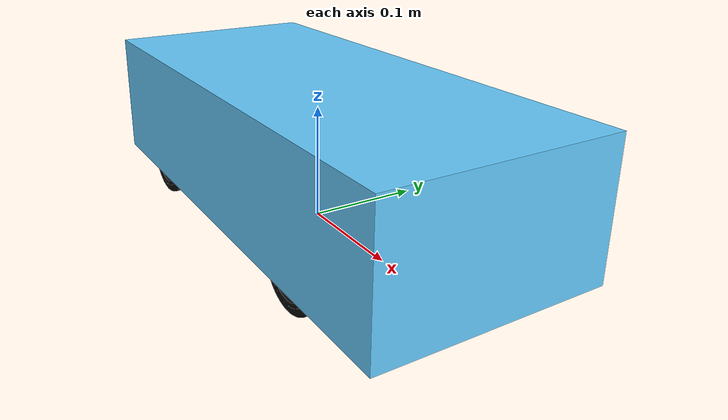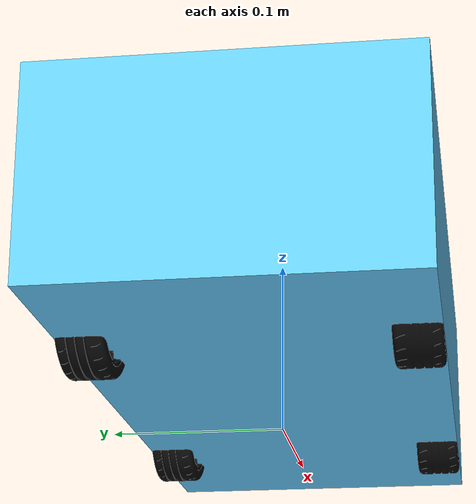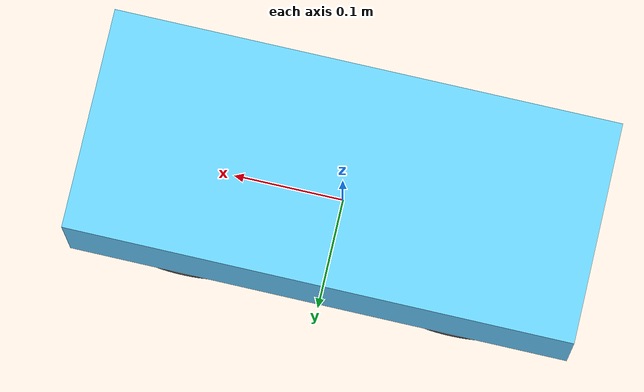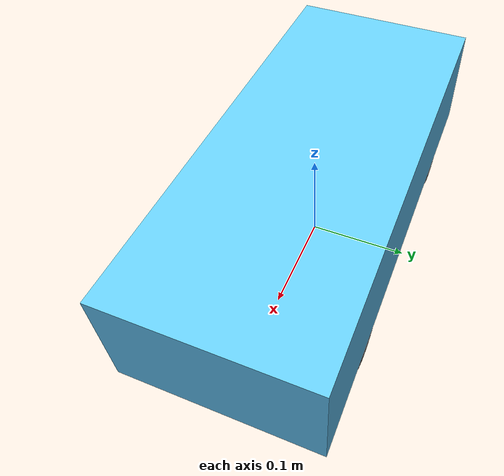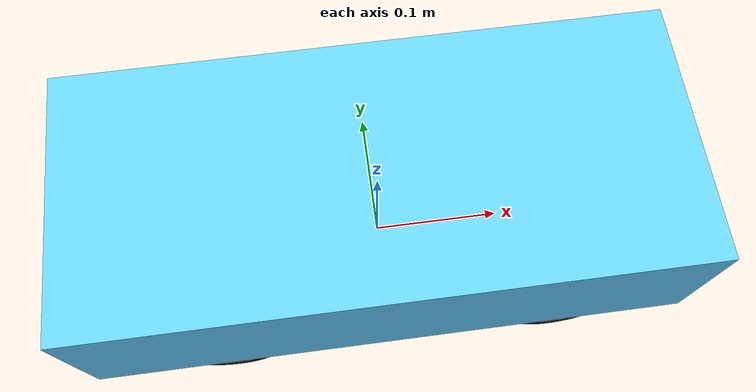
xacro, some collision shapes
<?xml version="1.0"?>
<robot name="cuchak" xmlns:xacro="http://www.ros.org/wiki/xacro">

  <xacro:include filename="$(find cuchak_description)/urdf/common_properties.xacro"/>

  <xacro:include filename="$(find cuchak_description)/urdf/gz_definitions.xacro"/>

  <xacro:include filename="$(find cuchak_description)/urdf/mobile_base.xacro"/>

  <xacro:include filename="$(find cuchak_description)/urdf/webcam.xacro"/>

</robot>

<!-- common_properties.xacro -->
<robot xmlns:xacro="http://www.ros.org/wiki/xacro">
    <material name="green">
        <color rgba="0.0 0.5 0.0 1.0"/>
    </material>

    <material name="grey">
        <color rgba="0.5 0.5 0.5 1.0"/>
    </material>

    <material name="black">
        <color rgba="0.05 0.05 0.05 1.0"/>
    </material>

    <xacro:macro name="box_inertia" params="l w h m o_xyz o_rpy">
        <inertial>
                <origin xyz="${o_xyz}" rpy="${o_rpy}"/>
                <mass value="${m}"/>
                <inertia ixx="${m*(w*w+h*h)/12.0}" ixy="0.0" ixz="0.0"
                         iyy="${m*(l*l+h*h)/12.0}" iyz="0.0"
                         izz="${m*(w*w+l*l)/12.0}"/>
        </inertial>
    </xacro:macro>

    <xacro:macro name="cylinder_inertia" params="r l m o_xyz o_rpy">
        <inertial>
                <origin xyz="${o_xyz}" rpy="${o_rpy}"/>
                <mass value="${m}"/>
                <inertia ixx="${m*(3*r*r+l*l)/12.0}" ixy="0.0" ixz="0.0"
                         iyy="${m*(l*l+3*r*r)/12.0}" iyz="0.0"
                         izz="${m*(r*r)/2.0}"/>
        </inertial>
    </xacro:macro>

    <xacro:macro name="sphere_inertia" params="r m o_xyz o_rpy">
        <inertial>
                <origin xyz="${o_xyz}" rpy="${o_rpy}"/>
                <mass value="${m}"/>
                <inertia ixx="${2*m*r*r/5.0}" ixy="0.0" ixz="0.0"
                         iyy="${2*m*r*r/5.0}" iyz="0.0"
                         izz="${2*m*r*r/5.0}"/>
        </inertial>
    </xacro:macro>

</robot>

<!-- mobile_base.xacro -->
<robot xmlns:xacro="http://www.ros.org/wiki/xacro">

  <!-- ================= MATERIALES ================= -->
  <material name="black">
    <color rgba="0 0 0 1"/>
  </material>
  <material name="blue">
    <color rgba="0.4 0.8 1.0 1.0"/>
  </material>

  <!-- ================= PARÁMETROS ================= -->
  <!-- 0.001 porque los STL están en milímetros -->
  <xacro:property name="mesh_scale" value="0.001"/>
  <xacro:property name="pi_2" value="1.5707963"/>

  <!-- En tu CAD el frente del carro apunta a -Y. ROS/Gazebo quieren el frente en +X.
       Por eso la malla de la base y su inercia se giran +90° en Z. -->
  <xacro:property name="cad_yaw" value="1.5707963"/>

  <!-- Llantas (medidas del STL: diámetro 68.60 mm, ancho 25.78 mm).
       El centro de la llanta queda a 0.0713 - 0.037 = 0.0343 m del piso -->
  <xacro:property name="wheel_radius" value="0.0343"/>
  <xacro:property name="wheel_width"  value="0.02578"/>
  <xacro:property name="wheel_mass"   value="0.009"/>
  <xacro:property name="wheel_z"      value="-0.037"/>

  <!-- Posiciones ya en el marco ROS (x adelante, y izquierda).
       Salen de tus joints: x_ros = -y_cad, y_ros = x_cad -->
  <xacro:property name="front_x"    value="0.125"/>
  <xacro:property name="rear_x"     value="-0.12"/>
  <xacro:property name="half_track" value="0.0859"/>

  <!-- Base -->
  <xacro:property name="base_mass" value="1.2700"/>
  <xacro:property name="cm_cad_x" value="-0.0003"/>
  <xacro:property name="cm_cad_y" value="0.0049"/>
  <xacro:property name="cm_cad_z" value="-0.0207"/>

  <xacro:macro name="wheel_link" params="prefix mesh_file">
    <link name="${prefix}_wheel_link">
      <inertial>
        <origin xyz="0 0 0" rpy="0 0 0"/>
        <mass value="${wheel_mass}"/>
        <!-- Mismos valores de tu script, pero el mayor (7.409e-6) va en X porque
             el eje de la llanta en el STL es X. Los productos de inercia eran ~1e-10 -->
        <inertia ixx="7.40919338e-06" ixy="0" ixz="0"
                 iyy="4.16983255e-06" iyz="0"
                 izz="4.16901342e-06"/>
      </inertial>
      <visual>
        <origin xyz="0 0 0" rpy="0 0 0"/>
        <geometry>
          <mesh filename="${mesh_file}" scale="${mesh_scale} ${mesh_scale} ${mesh_scale}"/>
        </geometry>
        <material name="black"/>
      </visual>
      <!-- Cilindro en vez de malla: más estable y rápido en Gazebo.
           El cilindro nace con su eje en Z; el giro de 90° en Y lo pone en X, como la llanta -->
      <collision>
        <origin xyz="0 0 0" rpy="0 ${pi_2} 0"/>
        <geometry>
          <cylinder radius="${wheel_radius}" length="${wheel_width}"/>
        </geometry>
      </collision>
    </link>
    <gazebo reference="${prefix}_wheel_link">
      <mu1>1.0</mu1>
      <mu2>1.0</mu2>
    </gazebo>
  </xacro:macro>

  <!-- ================= MACRO: LLANTA TRASERA (tracción) ================= -->
  <xacro:macro name="rear_wheel" params="prefix mesh_file y">
    <xacro:wheel_link prefix="${prefix}" mesh_file="${mesh_file}"/>
    <joint name="${prefix}_wheel_joint" type="continuous">
      <parent link="base_link"/>
      <child link="${prefix}_wheel_link"/>
      <!-- Misma orientación que la base (yaw del CAD): el eje X de la llanta queda en +Y (lateral) -->
      <origin xyz="${rear_x} ${y} ${wheel_z}" rpy="0 0 ${cad_yaw}"/>
      <axis xyz="1 0 0"/>
      <dynamics damping="0.001" friction="0.0"/>
    </joint>
  </xacro:macro>

  <!-- ================= MACRO: LLANTA DELANTERA (dirección) ================= -->
  <xacro:macro name="front_wheel" params="prefix mesh_file y">
    <link name="${prefix}_steering_link">
      <inertial>
        <origin xyz="0 0 0" rpy="0 0 0"/>
        <mass value="0.01"/>
        <inertia ixx="1e-6" ixy="0" ixz="0" iyy="1e-6" iyz="0" izz="1e-6"/>
      </inertial>
    </link>
    <joint name="${prefix}_steering_joint" type="revolute">
      <parent link="base_link"/>
      <child link="${prefix}_steering_link"/>
      <origin xyz="${front_x} ${y} ${wheel_z}" rpy="0 0 0"/>
      <axis xyz="0 0 1"/>
      <limit lower="-0.8" upper="0.8" effort="5.0" velocity="5.0"/>
    </joint>

    <xacro:wheel_link prefix="${prefix}" mesh_file="${mesh_file}"/>
    <joint name="${prefix}_wheel_joint" type="continuous">
      <parent link="${prefix}_steering_link"/>
      <child link="${prefix}_wheel_link"/>
      <origin xyz="0 0 0" rpy="0 0 ${cad_yaw}"/>
      <axis xyz="1 0 0"/>
      <dynamics damping="0.001" friction="0.0"/>
    </joint>
  </xacro:macro>

  <!-- ================= BASE ================= -->
  <link name="base_footprint"/>

  <link name="base_link">
    <inertial>
      <origin xyz="${-cm_cad_y} ${cm_cad_x} ${cm_cad_z}" rpy="0 0 ${cad_yaw}"/>
      <mass value="${base_mass}"/>
      <inertia ixx="0.010070" ixy="0.000075" ixz="0.000016"
              iyy="0.001856" iyz="-0.000063"
              izz="0.010855"/>
    </inertial>
    <visual>
      <origin xyz="0 0 0" rpy="0 0 ${cad_yaw}"/>
      <geometry>
        <mesh filename="package://cuchak_description/meshes/base.stl"
              scale="${mesh_scale} ${mesh_scale} ${mesh_scale}"/>
      </geometry>
      <material name="blue"/>
    </visual>
    <collision>
      <origin xyz="0 0 0" rpy="0 0 0"/>
      <geometry>
        <box size="0.45364 0.19758 0.11505"/>
      </geometry>
    </collision>
  </link>

  <joint name="base_joint" type="fixed">
    <parent link="base_footprint"/>
    <child link="base_link"/>
    <origin xyz="0 0 0.0713" rpy="0 0 0"/>
  </joint>

  <xacro:front_wheel prefix="front_left"
      mesh_file="package://cuchak_description/meshes/llanta_derecha_trasera.stl"
      y="${half_track}"/>
  <xacro:front_wheel prefix="front_right"
      mesh_file="package://cuchak_description/meshes/llanta_izquierda_trasera.stl"
      y="${-half_track}"/>
  <xacro:rear_wheel prefix="rear_left"
      mesh_file="package://cuchak_description/meshes/llanta_derecha_trasera.stl"
      y="${half_track}"/>
  <xacro:rear_wheel prefix="rear_right"
      mesh_file="package://cuchak_description/meshes/llanta_izquierda_trasera.stl"
      y="${-half_track}"/>

</robot>

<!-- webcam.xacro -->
<robot xmlns:xacro="http://www.ros.org/wiki/xacro">

    <xacro:property name="webcam_length" value="0.05"/>
    <xacro:property name="webcam_width" value="0.05"/>
    <xacro:property name="webcam_height" value="0.05"/>
    <xacro:property name="webcam_mass" value="0.1"/>

    <link name="webcam_link">

        <xacro:box_inertia
        l="${webcam_length}"
        w="${webcam_width}"
        h="${webcam_height}"
        m="${webcam_mass}"
        o_xyz="0 0 0"
        o_rpy="0 0 0"/>

        <visual>
        <origin xyz="0 0 0" rpy="0 0 0"/>
        <geometry>
            <box size="${webcam_length} ${webcam_width} ${webcam_height}"/>
        </geometry>
        <material name="green"/>
        </visual>

        <collision>
        <origin xyz="0 0 0" rpy="0 0 0"/>
        <geometry>
            <box size="${webcam_length} ${webcam_width} ${webcam_height}"/>
        </geometry>
        </collision>

    </link>

    <joint name="webcam_joint" type="fixed">
        <parent link="base_link"/>
        <child link="webcam_link"/>
        <origin xyz="0 0 0" rpy="0 0 0"/>
    </joint>

    <gazebo>
        <sensor type="camera" name="webcam">
            <pose>0 0 0 0 0 0</pose>
            <camera>
                <horizontal_fov>1.3962634</horizontal_fov>
                <image>
                    <width>640</width>
                    <height>480</height>
                    <format>R8G8B8</format>
                </image>
                <clip>
                    <near>0.1</near>
                    <far>100</far>
                </clip>
            </camera>
            <always_on>true</always_on>
            <update_rate>30</update_rate>
            <visualize>true</visualize>
        </sensor>
    </gazebo>

</robot>
